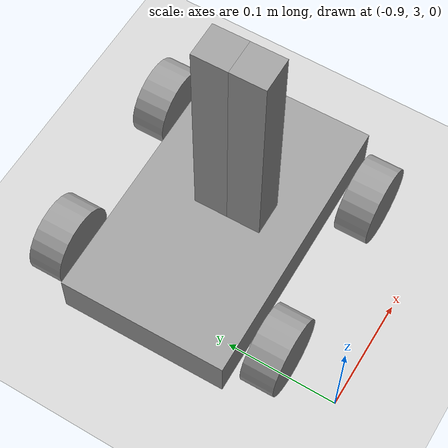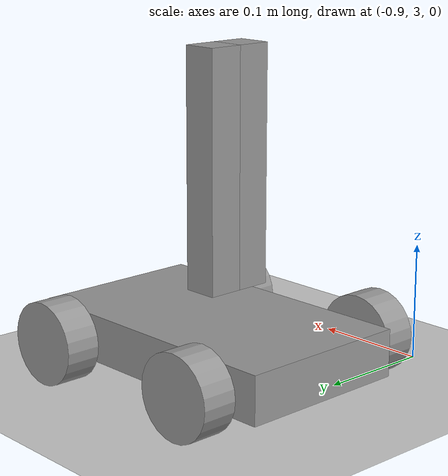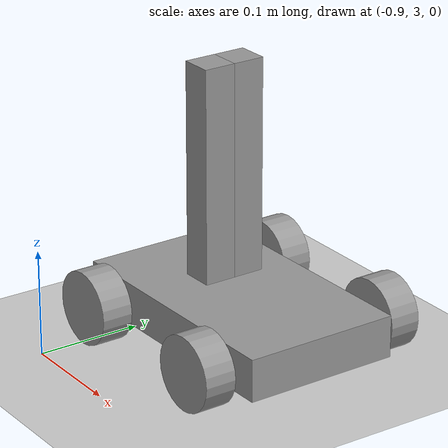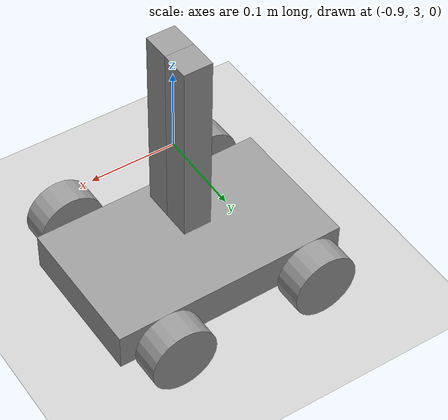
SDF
<sdf version="1.6">
 <world name="default">
  <model name="ground_plane">
   <static>1</static>
   <link name="link">
    <collision name="collision">
     <geometry><plane><normal>0 0 1</normal><size>100 100</size></plane></geometry>
     <surface><friction><ode><mu>100</mu><mu2>50</mu2></ode></friction></surface>
    </collision>
    <visual name="visual">
     <cast_shadows>0</cast_shadows>
     <geometry><plane><normal>0 0 1</normal><size>100 100</size></plane></geometry>
     <material>
      <script><uri>file://media/materials/scripts/gazebo.material</uri><name>Gazebo/Grey</name></script>
     </material>
    </visual>
   </link>
  </model>
  <model name="MRA_0">
   <link name="link_0">
    <inertial>
     <mass>1</mass>
     <inertia>
      <ixx>0.166667</ixx>
      <ixy>0</ixy>
      <ixz>0</ixz>
      <iyy>0.166667</iyy>
      <iyz>0</iyz>
      <izz>0.166667</izz>
     </inertia>
    </inertial>
    <pose>0.024765 0.00253 -0.04 0 -0 0</pose>
    <visual name="visual">
     <geometry><box><size>0.25 0.15 0.04</size></box></geometry>
     <material>
      <lighting>1</lighting>
      <script><uri>file://media/materials/scripts/gazebo.material</uri><name>Gazebo/Grey</name></script>
      <shader type="pixel"><normal_map>__default__</normal_map></shader>
      <ambient>0.3 0.3 0.3 1</ambient>
      <diffuse>0.7 0.7 0.7 1</diffuse>
      <specular>0.01 0.01 0.01 1</specular>
      <emissive>0 0 0 1</emissive>
     </material>
    </visual>
    <collision name="collision">
     <geometry><box><size>0.25 0.15 0.04</size></box></geometry>
     <surface>
      <friction>
       <ode><mu>1</mu><mu2>1</mu2><fdir1>0 0 0</fdir1><slip1>0</slip1><slip2>0</slip2></ode>
       <torsional>
        <coefficient>1</coefficient>
        <patch_radius>0</patch_radius>
        <surface_radius>0</surface_radius>
        <use_patch_radius>1</use_patch_radius>
        <ode><slip>0</slip></ode>
       </torsional>
      </friction>
      <bounce><restitution_coefficient>0</restitution_coefficient><threshold>1e+06</threshold></bounce>
      <contact>
       <collide_without_contact>0</collide_without_contact>
       <collide_without_contact_bitmask>1</collide_without_contact_bitmask>
       <collide_bitmask>1</collide_bitmask>
       <ode>
        <soft_cfm>0</soft_cfm>
        <soft_erp>0.2</soft_erp>
        <kp>1e+13</kp>
        <kd>1</kd>
        <max_vel>0.01</max_vel>
        <min_depth>0</min_depth>
       </ode>
       <bullet>
        <split_impulse>1</split_impulse>
        <split_impulse_penetration_threshold>-0.01</split_impulse_penetration_threshold>
        <soft_cfm>0</soft_cfm>
        <soft_erp>0.2</soft_erp>
        <kp>1e+13</kp>
        <kd>1</kd>
       </bullet>
      </contact>
     </surface>
    </collision>
   </link>
   <link name="link_1">
    <inertial>
     <mass>1</mass>
     <inertia><ixx>0.145833</ixx><ixy>0</ixy><ixz>0</ixz><iyy>0.145833</iyy><iyz>0</iyz><izz>0.125</izz></inertia>
    </inertial>
    <pose>0.104765 0.10253 -0.04 1.57079 -0 0</pose>
    <visual name="visual">
     <geometry><cylinder><radius>0.035</radius><length>0.03</length></cylinder></geometry>
     <material>
      <lighting>1</lighting>
      <script><uri>file://media/materials/scripts/gazebo.material</uri><name>Gazebo/Grey</name></script>
      <shader type="pixel"><normal_map>__default__</normal_map></shader>
      <ambient>0.3 0.3 0.3 1</ambient>
      <diffuse>0.7 0.7 0.7 1</diffuse>
      <specular>0.01 0.01 0.01 1</specular>
      <emissive>0 0 0 1</emissive>
     </material>
    </visual>
    <collision name="collision">
     <geometry><cylinder><radius>0.035</radius><length>0.03</length></cylinder></geometry>
     <surface>
      <friction>
       <ode><mu>1</mu><mu2>1</mu2><fdir1>0 0 0</fdir1><slip1>0</slip1><slip2>0</slip2></ode>
       <torsional>
        <coefficient>1</coefficient>
        <patch_radius>0</patch_radius>
        <surface_radius>0</surface_radius>
        <use_patch_radius>1</use_patch_radius>
        <ode><slip>0</slip></ode>
       </torsional>
      </friction>
      <bounce><restitution_coefficient>0</restitution_coefficient><threshold>1e+06</threshold></bounce>
      <contact>
       <collide_without_contact>0</collide_without_contact>
       <collide_without_contact_bitmask>1</collide_without_contact_bitmask>
       <collide_bitmask>1</collide_bitmask>
       <ode>
        <soft_cfm>0</soft_cfm>
        <soft_erp>0.2</soft_erp>
        <kp>1e+13</kp>
        <kd>1</kd>
        <max_vel>0.01</max_vel>
        <min_depth>0</min_depth>
       </ode>
       <bullet>
        <split_impulse>1</split_impulse>
        <split_impulse_penetration_threshold>-0.01</split_impulse_penetration_threshold>
        <soft_cfm>0</soft_cfm>
        <soft_erp>0.2</soft_erp>
        <kp>1e+13</kp>
        <kd>1</kd>
       </bullet>
      </contact>
     </surface>
    </collision>
   </link>
   <link name="link_1_clone">
    <inertial>
     <mass>1</mass>
     <inertia><ixx>0.145833</ixx><ixy>0</ixy><ixz>0</ixz><iyy>0.145833</iyy><iyz>0</iyz><izz>0.125</izz></inertia>
    </inertial>
    <pose>-0.055235 0.10253 -0.04 1.57079 -0 0</pose>
    <visual name="visual">
     <geometry><cylinder><radius>0.035</radius><length>0.03</length></cylinder></geometry>
     <material>
      <lighting>1</lighting>
      <script><uri>file://media/materials/scripts/gazebo.material</uri><name>Gazebo/Grey</name></script>
      <shader type="pixel"><normal_map>__default__</normal_map></shader>
      <ambient>0.3 0.3 0.3 1</ambient>
      <diffuse>0.7 0.7 0.7 1</diffuse>
      <specular>0.01 0.01 0.01 1</specular>
      <emissive>0 0 0 1</emissive>
     </material>
    </visual>
    <collision name="collision">
     <geometry><cylinder><radius>0.035</radius><length>0.03</length></cylinder></geometry>
     <surface>
      <friction>
       <ode><mu>1</mu><mu2>1</mu2><fdir1>0 0 0</fdir1><slip1>0</slip1><slip2>0</slip2></ode>
       <torsional>
        <coefficient>1</coefficient>
        <patch_radius>0</patch_radius>
        <surface_radius>0</surface_radius>
        <use_patch_radius>1</use_patch_radius>
        <ode><slip>0</slip></ode>
       </torsional>
      </friction>
      <bounce><restitution_coefficient>0</restitution_coefficient><threshold>1e+06</threshold></bounce>
      <contact>
       <collide_without_contact>0</collide_without_contact>
       <collide_without_contact_bitmask>1</collide_without_contact_bitmask>
       <collide_bitmask>1</collide_bitmask>
       <ode>
        <soft_cfm>0</soft_cfm>
        <soft_erp>0.2</soft_erp>
        <kp>1e+13</kp>
        <kd>1</kd>
        <max_vel>0.01</max_vel>
        <min_depth>0</min_depth>
       </ode>
       <bullet>
        <split_impulse>1</split_impulse>
        <split_impulse_penetration_threshold>-0.01</split_impulse_penetration_threshold>
        <soft_cfm>0</soft_cfm>
        <soft_erp>0.2</soft_erp>
        <kp>1e+13</kp>
        <kd>1</kd>
       </bullet>
      </contact>
     </surface>
    </collision>
   </link>
   <link name="link_1_clone_0">
    <inertial>
     <mass>1</mass>
     <inertia><ixx>0.145833</ixx><ixy>0</ixy><ixz>0</ixz><iyy>0.145833</iyy><iyz>0</iyz><izz>0.125</izz></inertia>
    </inertial>
    <pose>-0.055235 -0.09747 -0.04 1.57079 -0 0</pose>
    <visual name="visual">
     <geometry><cylinder><radius>0.035</radius><length>0.03</length></cylinder></geometry>
     <material>
      <lighting>1</lighting>
      <script><uri>file://media/materials/scripts/gazebo.material</uri><name>Gazebo/Grey</name></script>
      <shader type="pixel"><normal_map>__default__</normal_map></shader>
      <ambient>0.3 0.3 0.3 1</ambient>
      <diffuse>0.7 0.7 0.7 1</diffuse>
      <specular>0.01 0.01 0.01 1</specular>
      <emissive>0 0 0 1</emissive>
     </material>
    </visual>
    <collision name="collision">
     <geometry><cylinder><radius>0.035</radius><length>0.03</length></cylinder></geometry>
     <surface>
      <friction>
       <ode><mu>1</mu><mu2>1</mu2><fdir1>0 0 0</fdir1><slip1>0</slip1><slip2>0</slip2></ode>
       <torsional>
        <coefficient>1</coefficient>
        <patch_radius>0</patch_radius>
        <surface_radius>0</surface_radius>
        <use_patch_radius>1</use_patch_radius>
        <ode><slip>0</slip></ode>
       </torsional>
      </friction>
      <bounce><restitution_coefficient>0</restitution_coefficient><threshold>1e+06</threshold></bounce>
      <contact>
       <collide_without_contact>0</collide_without_contact>
       <collide_without_contact_bitmask>1</collide_without_contact_bitmask>
       <collide_bitmask>1</collide_bitmask>
       <ode>
        <soft_cfm>0</soft_cfm>
        <soft_erp>0.2</soft_erp>
        <kp>1e+13</kp>
        <kd>1</kd>
        <max_vel>0.01</max_vel>
        <min_depth>0</min_depth>
       </ode>
       <bullet>
        <split_impulse>1</split_impulse>
        <split_impulse_penetration_threshold>-0.01</split_impulse_penetration_threshold>
        <soft_cfm>0</soft_cfm>
        <soft_erp>0.2</soft_erp>
        <kp>1e+13</kp>
        <kd>1</kd>
       </bullet>
      </contact>
     </surface>
    </collision>
   </link>
   <link name="link_1_clone_1">
    <inertial>
     <mass>1</mass>
     <inertia><ixx>0.145833</ixx><ixy>0</ixy><ixz>0</ixz><iyy>0.145833</iyy><iyz>0</iyz><izz>0.125</izz></inertia>
    </inertial>
    <pose>0.104765 -0.09747 -0.04 1.57079 -0 0</pose>
    <visual name="visual">
     <geometry><cylinder><radius>0.035</radius><length>0.03</length></cylinder></geometry>
     <material>
      <lighting>1</lighting>
      <script><uri>file://media/materials/scripts/gazebo.material</uri><name>Gazebo/Grey</name></script>
      <shader type="pixel"><normal_map>__default__</normal_map></shader>
      <ambient>0.3 0.3 0.3 1</ambient>
      <diffuse>0.7 0.7 0.7 1</diffuse>
      <specular>0.01 0.01 0.01 1</specular>
      <emissive>0 0 0 1</emissive>
     </material>
    </visual>
    <collision name="collision">
     <geometry><cylinder><radius>0.035</radius><length>0.03</length></cylinder></geometry>
     <surface>
      <friction>
       <ode><mu>1</mu><mu2>1</mu2><fdir1>0 0 0</fdir1><slip1>0</slip1><slip2>0</slip2></ode>
       <torsional>
        <coefficient>1</coefficient>
        <patch_radius>0</patch_radius>
        <surface_radius>0</surface_radius>
        <use_patch_radius>1</use_patch_radius>
        <ode><slip>0</slip></ode>
       </torsional>
      </friction>
      <bounce><restitution_coefficient>0</restitution_coefficient><threshold>1e+06</threshold></bounce>
      <contact>
       <collide_without_contact>0</collide_without_contact>
       <collide_without_contact_bitmask>1</collide_without_contact_bitmask>
       <collide_bitmask>1</collide_bitmask>
       <ode>
        <soft_cfm>0</soft_cfm>
        <soft_erp>0.2</soft_erp>
        <kp>1e+13</kp>
        <kd>1</kd>
        <max_vel>0.01</max_vel>
        <min_depth>0</min_depth>
       </ode>
       <bullet>
        <split_impulse>1</split_impulse>
        <split_impulse_penetration_threshold>-0.01</split_impulse_penetration_threshold>
        <soft_cfm>0</soft_cfm>
        <soft_erp>0.2</soft_erp>
        <kp>1e+13</kp>
        <kd>1</kd>
       </bullet>
      </contact>
     </surface>
    </collision>
   </link>
   <link name="link_2">
    <inertial>
     <mass>1</mass>
     <inertia>
      <ixx>0.166667</ixx>
      <ixy>0</ixy>
      <ixz>0</ixz>
      <iyy>0.166667</iyy>
      <iyz>0</iyz>
      <izz>0.166667</izz>
     </inertia>
    </inertial>
    <pose>0.024765 0.00253 0.1 0 -0 0</pose>
    <visual name="visual">
     <geometry><box><size>0.03 0.03 0.2</size></box></geometry>
     <material>
      <lighting>1</lighting>
      <script><uri>file://media/materials/scripts/gazebo.material</uri><name>Gazebo/Grey</name></script>
      <shader type="pixel"><normal_map>__default__</normal_map></shader>
      <ambient>0.3 0.3 0.3 1</ambient>
      <diffuse>0.7 0.7 0.7 1</diffuse>
      <specular>0.01 0.01 0.01 1</specular>
      <emissive>0 0 0 1</emissive>
     </material>
    </visual>
    <collision name="collision">
     <geometry><box><size>0.03 0.03 0.2</size></box></geometry>
     <surface>
      <friction>
       <ode><mu>1</mu><mu2>1</mu2><fdir1>0 0 0</fdir1><slip1>0</slip1><slip2>0</slip2></ode>
       <torsional>
        <coefficient>1</coefficient>
        <patch_radius>0</patch_radius>
        <surface_radius>0</surface_radius>
        <use_patch_radius>1</use_patch_radius>
        <ode><slip>0</slip></ode>
       </torsional>
      </friction>
      <bounce><restitution_coefficient>0</restitution_coefficient><threshold>1e+06</threshold></bounce>
      <contact>
       <collide_without_contact>0</collide_without_contact>
       <collide_without_contact_bitmask>1</collide_without_contact_bitmask>
       <collide_bitmask>1</collide_bitmask>
       <ode>
        <soft_cfm>0</soft_cfm>
        <soft_erp>0.2</soft_erp>
        <kp>1e+13</kp>
        <kd>1</kd>
        <max_vel>0.01</max_vel>
        <min_depth>0</min_depth>
       </ode>
       <bullet>
        <split_impulse>1</split_impulse>
        <split_impulse_penetration_threshold>-0.01</split_impulse_penetration_threshold>
        <soft_cfm>0</soft_cfm>
        <soft_erp>0.2</soft_erp>
        <kp>1e+13</kp>
        <kd>1</kd>
       </bullet>
      </contact>
     </surface>
    </collision>
   </link>
   <link name="link_2_clone">
    <inertial>
     <mass>1</mass>
     <inertia>
      <ixx>0.166667</ixx>
      <ixy>0</ixy>
      <ixz>0</ixz>
      <iyy>0.166667</iyy>
      <iyz>0</iyz>
      <izz>0.166667</izz>
     </inertia>
    </inertial>
    <pose>0.024765 -0.02747 0.1 0 -0 0</pose>
    <visual name="visual">
     <geometry><box><size>0.03 0.03 0.2</size></box></geometry>
     <material>
      <lighting>1</lighting>
      <script><uri>file://media/materials/scripts/gazebo.material</uri><name>Gazebo/Grey</name></script>
      <shader type="pixel"><normal_map>__default__</normal_map></shader>
      <ambient>0.3 0.3 0.3 1</ambient>
      <diffuse>0.7 0.7 0.7 1</diffuse>
      <specular>0.01 0.01 0.01 1</specular>
      <emissive>0 0 0 1</emissive>
     </material>
    </visual>
    <collision name="collision">
     <geometry><box><size>0.03 0.03 0.2</size></box></geometry>
     <surface>
      <friction>
       <ode><mu>1</mu><mu2>1</mu2><fdir1>0 0 0</fdir1><slip1>0</slip1><slip2>0</slip2></ode>
       <torsional>
        <coefficient>1</coefficient>
        <patch_radius>0</patch_radius>
        <surface_radius>0</surface_radius>
        <use_patch_radius>1</use_patch_radius>
        <ode><slip>0</slip></ode>
       </torsional>
      </friction>
      <bounce><restitution_coefficient>0</restitution_coefficient><threshold>1e+06</threshold></bounce>
      <contact>
       <collide_without_contact>0</collide_without_contact>
       <collide_without_contact_bitmask>1</collide_without_contact_bitmask>
       <collide_bitmask>1</collide_bitmask>
       <ode>
        <soft_cfm>0</soft_cfm>
        <soft_erp>0.2</soft_erp>
        <kp>1e+13</kp>
        <kd>1</kd>
        <max_vel>0.01</max_vel>
        <min_depth>0</min_depth>
       </ode>
       <bullet>
        <split_impulse>1</split_impulse>
        <split_impulse_penetration_threshold>-0.01</split_impulse_penetration_threshold>
        <soft_cfm>0</soft_cfm>
        <soft_erp>0.2</soft_erp>
        <kp>1e+13</kp>
        <kd>1</kd>
       </bullet>
      </contact>
     </surface>
    </collision>
   </link>
   <joint name="link_0_JOINT_0" type="revolute">
    <parent>link_0</parent>
    <child>link_1_clone_1</child>
    <axis>
     <xyz>0 0 1</xyz>
     <use_parent_model_frame>0</use_parent_model_frame>
     <limit>
      <lower>-1.79769e+308</lower>
      <upper>1.79769e+308</upper>
      <effort>-1</effort>
      <velocity>-1</velocity>
     </limit>
     <dynamics>
      <spring_reference>0</spring_reference>
      <spring_stiffness>0</spring_stiffness>
      <damping>0</damping>
     </dynamics>
    </axis>
    <physics>
     <ode><limit><cfm>0</cfm><erp>0.2</erp></limit><suspension><cfm>0</cfm><erp>0.2</erp></suspension></ode>
    </physics>
   </joint>
   <joint name="link_0_JOINT_1" type="revolute">
    <parent>link_0</parent>
    <child>link_1_clone_0</child>
    <axis>
     <xyz>0 0 1</xyz>
     <use_parent_model_frame>0</use_parent_model_frame>
     <limit>
      <lower>-1.79769e+308</lower>
      <upper>1.79769e+308</upper>
      <effort>-1</effort>
      <velocity>-1</velocity>
     </limit>
     <dynamics>
      <spring_reference>0</spring_reference>
      <spring_stiffness>0</spring_stiffness>
      <damping>0</damping>
     </dynamics>
    </axis>
    <physics>
     <ode><limit><cfm>0</cfm><erp>0.2</erp></limit><suspension><cfm>0</cfm><erp>0.2</erp></suspension></ode>
    </physics>
   </joint>
   <joint name="link_0_JOINT_2" type="revolute">
    <parent>link_0</parent>
    <child>link_1</child>
    <axis>
     <xyz>0 0 1</xyz>
     <use_parent_model_frame>0</use_parent_model_frame>
     <limit>
      <lower>-1.79769e+308</lower>
      <upper>1.79769e+308</upper>
      <effort>-1</effort>
      <velocity>-1</velocity>
     </limit>
     <dynamics>
      <spring_reference>0</spring_reference>
      <spring_stiffness>0</spring_stiffness>
      <damping>0</damping>
     </dynamics>
    </axis>
    <physics>
     <ode><limit><cfm>0</cfm><erp>0.2</erp></limit><suspension><cfm>0</cfm><erp>0.2</erp></suspension></ode>
    </physics>
   </joint>
   <joint name="link_0_JOINT_3" type="revolute">
    <parent>link_0</parent>
    <child>link_1_clone</child>
    <axis>
     <xyz>0 0 1</xyz>
     <use_parent_model_frame>0</use_parent_model_frame>
     <limit>
      <lower>-1.79769e+308</lower>
      <upper>1.79769e+308</upper>
      <effort>-1</effort>
      <velocity>-1</velocity>
     </limit>
     <dynamics>
      <spring_reference>0</spring_reference>
      <spring_stiffness>0</spring_stiffness>
      <damping>0</damping>
     </dynamics>
    </axis>
    <physics>
     <ode><limit><cfm>0</cfm><erp>0.2</erp></limit><suspension><cfm>0</cfm><erp>0.2</erp></suspension></ode>
    </physics>
   </joint>
   <joint name="link_0_JOINT_4" type="revolute">
    <parent>link_0</parent>
    <child>link_2</child>
    <pose>0 0 -0.1 0 -0 0</pose>
    <axis>
     <xyz>0 1 0</xyz>
     <use_parent_model_frame>0</use_parent_model_frame>
     <limit>
      <lower>-1.79769e+308</lower>
      <upper>1.79769e+308</upper>
      <effort>-1</effort>
      <velocity>-1</velocity>
     </limit>
     <dynamics>
      <spring_reference>0</spring_reference>
      <spring_stiffness>0</spring_stiffness>
      <damping>0</damping>
     </dynamics>
    </axis>
    <physics>
     <ode><limit><cfm>0</cfm><erp>0.2</erp></limit><suspension><cfm>0</cfm><erp>0.2</erp></suspension></ode>
    </physics>
   </joint>
   <joint name="link_2_JOINT_9" type="revolute">
    <parent>link_2</parent>
    <child>link_2_clone</child>
    <pose>0 0 0.1 0 -0 0</pose>
    <axis>
     <xyz>0 1 0</xyz>
     <use_parent_model_frame>0</use_parent_model_frame>
     <limit>
      <lower>-1.79769e+308</lower>
      <upper>1.79769e+308</upper>
      <effort>-1</effort>
      <velocity>-1</velocity>
     </limit>
     <dynamics>
      <spring_reference>0</spring_reference>
      <spring_stiffness>0</spring_stiffness>
      <damping>0</damping>
     </dynamics>
    </axis>
    <physics>
     <ode><limit><cfm>0</cfm><erp>0.2</erp></limit><suspension><cfm>0</cfm><erp>0.2</erp></suspension></ode>
    </physics>
   </joint>
   <static>0</static>
   <pose>-0.842666 3.15523 0.075 2e-06 1e-06 0.013826</pose>
  </model>
 </world>
</sdf>
